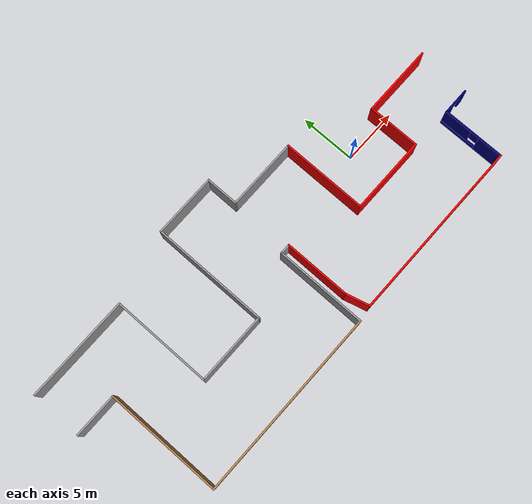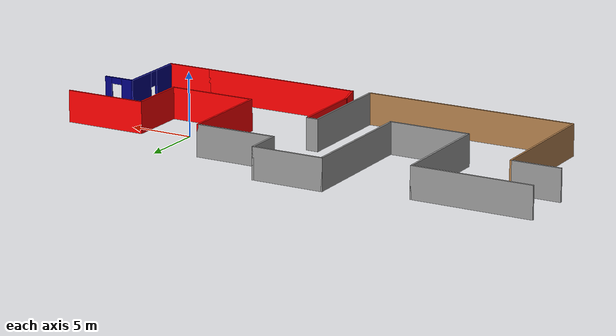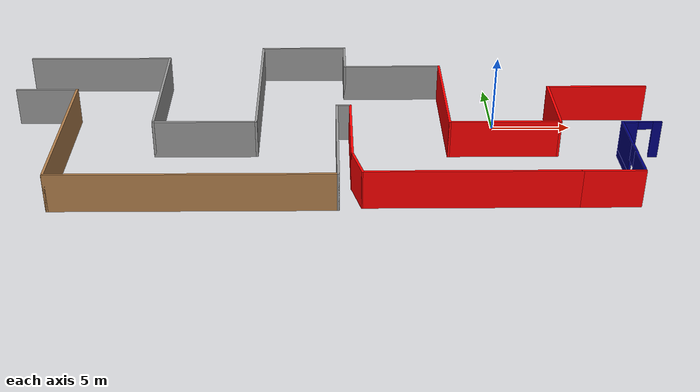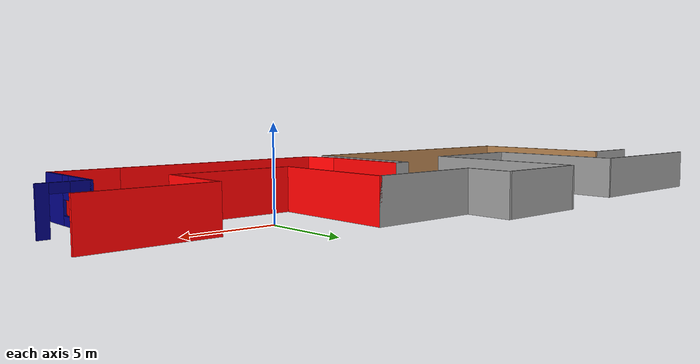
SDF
<?xml version='1.0'?>
<sdf version='1.6'>
  <model name='mybuilding'>
    <pose frame=''>-10.4735 -1.25673 0 0 -0 0</pose>
    <link name='Wall_10'>
      <collision name='Wall_10_Collision'>
        <geometry>
          <box>
            <size>6.5 0.15 2.5</size>
          </box>
        </geometry>
        <pose frame=''>0 0 1.25 0 -0 0</pose>
      </collision>
      <visual name='Wall_10_Visual'>
        <pose frame=''>0 0 1.25 0 -0 0</pose>
        <geometry>
          <box>
            <size>6.5 0.15 2.5</size>
          </box>
        </geometry>
        <material>
          <script>
            <uri>file://media/materials/scripts/gazebo.material</uri>
            <name>Gazebo/Grey</name>
          </script>
          <ambient>1 1 1 1</ambient>
        </material>
        <meta>
          <layer>0</layer>
        </meta>
      </visual>
      <pose frame=''>4.05 5.33923 0 0 -0 0</pose>
    </link>
    <link name='Wall_11'>
      <collision name='Wall_11_Collision'>
        <geometry>
          <box>
            <size>7.75 0.15 2.5</size>
          </box>
        </geometry>
        <pose frame=''>0 0 1.25 0 -0 0</pose>
      </collision>
      <visual name='Wall_11_Visual'>
        <pose frame=''>0 0 1.25 0 -0 0</pose>
        <geometry>
          <box>
            <size>7.75 0.15 2.5</size>
          </box>
        </geometry>
        <material>
          <script>
            <uri>file://media/materials/scripts/gazebo.material</uri>
            <name>Gazebo/Grey</name>
          </script>
          <ambient>1 0 0 1</ambient>
        </material>
        <meta>
          <layer>0</layer>
        </meta>
      </visual>
      <pose frame=''>7.225 1.53923 0 0 0 -1.5708</pose>
    </link>
    <link name='Wall_12'>
      <collision name='Wall_12_Collision'>
        <geometry>
          <box>
            <size>7 0.15 2.5</size>
          </box>
        </geometry>
        <pose frame=''>0 0 1.25 0 -0 0</pose>
      </collision>
      <visual name='Wall_12_Visual'>
        <pose frame=''>0 0 1.25 0 -0 0</pose>
        <geometry>
          <box>
            <size>7 0.15 2.5</size>
          </box>
        </geometry>
        <material>
          <script>
            <uri>file://media/materials/scripts/gazebo.material</uri>
            <name>Gazebo/Grey</name>
          </script>
          <ambient>1 0 0 1</ambient>
        </material>
        <meta>
          <layer>0</layer>
        </meta>
      </visual>
      <pose frame=''>10.65 -2.26077 0 0 -0 0</pose>
    </link>
    <link name='Wall_13'>
      <collision name='Wall_13_Collision'>
        <geometry>
          <box>
            <size>4.75 0.15 2.5</size>
          </box>
        </geometry>
        <pose frame=''>0 0 1.25 0 -0 0</pose>
      </collision>
      <visual name='Wall_13_Visual'>
        <pose frame=''>0 0 1.25 0 -0 0</pose>
        <geometry>
          <box>
            <size>4.75 0.15 2.5</size>
          </box>
        </geometry>
        <material>
          <script>
            <uri>file://media/materials/scripts/gazebo.material</uri>
            <name>Gazebo/Grey</name>
          </script>
          <ambient>1 0 0 1</ambient>
        </material>
        <meta>
          <layer>0</layer>
        </meta>
      </visual>
      <pose frame=''>14.075 0.039226 0 0 -0 1.5708</pose>
    </link>
    <link name='Wall_14'>
      <collision name='Wall_14_Collision'>
        <geometry>
          <box>
            <size>6.5 0.15 2.5</size>
          </box>
        </geometry>
        <pose frame=''>0 0 1.25 0 -0 0</pose>
      </collision>
      <visual name='Wall_14_Visual'>
        <pose frame=''>0 0 1.25 0 -0 0</pose>
        <geometry>
          <box>
            <size>6.5 0.15 2.5</size>
          </box>
        </geometry>
        <material>
          <script>
            <uri>file://media/materials/scripts/gazebo.material</uri>
            <name>Gazebo/Grey</name>
          </script>
          <ambient>1 0 0 1</ambient>
        </material>
        <meta>
          <layer>0</layer>
        </meta>
      </visual>
      <pose frame=''>17.25 2.33923 0 0 -0 0</pose>
    </link>
    <link name='Wall_16'>
      <collision name='Wall_16_Collision'>
        <geometry>
          <box>
            <size>4 0.15 2.5</size>
          </box>
        </geometry>
        <pose frame=''>0 0 1.25 0 -0 0</pose>
      </collision>
      <visual name='Wall_16_Visual'>
        <pose frame=''>0 0 1.25 0 -0 0</pose>
        <geometry>
          <box>
            <size>4 0.15 2.5</size>
          </box>
        </geometry>
        <material>
          <script>
            <uri>file://media/materials/scripts/gazebo.material</uri>
            <name>Gazebo/Grey</name>
          </script>
          <ambient>1 1 1 1</ambient>
        </material>
        <meta>
          <layer>0</layer>
        </meta>
      </visual>
      <pose frame=''>-18.5 2.16077 0 0 -0 0</pose>
    </link>
    <link name='Wall_17'>
      <collision name='Wall_17_Collision'>
        <geometry>
          <box>
            <size>10.5 0.15 2.5</size>
          </box>
        </geometry>
        <pose frame=''>0 0 1.25 0 -0 0</pose>
      </collision>
      <visual name='Wall_17_Visual'>
        <pose frame=''>0 0 1.25 0 -0 0</pose>
        <geometry>
          <box>
            <size>10.5 0.15 2.5</size>
          </box>
        </geometry>
        <material>
          <script>
            <uri>file://media/materials/scripts/gazebo.material</uri>
            <name>Gazebo/Wood</name>
          </script>
          <ambient>1 1 1 1</ambient>
        </material>
        <meta>
          <layer>0</layer>
        </meta>
      </visual>
      <pose frame=''>-16.575 -3.01423 0 0 0 -1.5708</pose>
    </link>
    <link name='Wall_18'>
      <collision name='Wall_18_Collision'>
        <geometry>
          <box>
            <size>17 0.15 2.5</size>
          </box>
        </geometry>
        <pose frame=''>0 0 1.25 0 -0 0</pose>
      </collision>
      <visual name='Wall_18_Visual'>
        <pose frame=''>0 0 1.25 0 -0 0</pose>
        <geometry>
          <box>
            <size>17 0.15 2.5</size>
          </box>
        </geometry>
        <material>
          <script>
            <uri>file://media/materials/scripts/gazebo.material</uri>
            <name>Gazebo/Wood</name>
          </script>
          <ambient>1 1 1 1</ambient>
        </material>
        <meta>
          <layer>0</layer>
        </meta>
      </visual>
      <pose frame=''>-8.15 -8.18923 0 0 -0 0</pose>
    </link>
    <link name='Wall_19'>
      <collision name='Wall_19_Collision'>
        <geometry>
          <box>
            <size>8.25 0.15 2.5</size>
          </box>
        </geometry>
        <pose frame=''>0 0 1.25 0 -0 0</pose>
      </collision>
      <visual name='Wall_19_Visual'>
        <pose frame=''>0 0 1.25 0 -0 0</pose>
        <geometry>
          <box>
            <size>8.25 0.15 2.5</size>
          </box>
        </geometry>
        <material>
          <script>
            <uri>file://media/materials/scripts/gazebo.material</uri>
            <name>Gazebo/Grey</name>
          </script>
          <ambient>1 1 1 1</ambient>
        </material>
        <meta>
          <layer>0</layer>
        </meta>
      </visual>
      <pose frame=''>0.275 -4.13923 0 0 -0 1.5708</pose>
    </link>
    <link name='Wall_20'>
      <collision name='Wall_20_Collision'>
        <geometry>
          <box>
            <size>1 0.15 2.5</size>
          </box>
        </geometry>
        <pose frame=''>0 0 1.25 0 -0 0</pose>
      </collision>
      <visual name='Wall_20_Visual'>
        <pose frame=''>0 0 1.25 0 -0 0</pose>
        <geometry>
          <box>
            <size>1 0.15 2.5</size>
          </box>
        </geometry>
        <material>
          <script>
            <uri>file://media/materials/scripts/gazebo.material</uri>
            <name>Gazebo/Grey</name>
          </script>
          <ambient>1 1 1 1</ambient>
        </material>
        <meta>
          <layer>0</layer>
        </meta>
      </visual>
      <pose frame=''>0.7 -0.089226 0 0 -0 0</pose>
    </link>
    <link name='Wall_21'>
      <collision name='Wall_21_Collision'>
        <geometry>
          <box>
            <size>6 0.15 2.5</size>
          </box>
        </geometry>
        <pose frame=''>0 0 1.25 0 -0 0</pose>
      </collision>
      <visual name='Wall_21_Visual'>
        <pose frame=''>0 0 1.25 0 -0 0</pose>
        <geometry>
          <box>
            <size>6 0.15 2.5</size>
          </box>
        </geometry>
        <material>
          <script>
            <uri>file://media/materials/scripts/gazebo.material</uri>
            <name>Gazebo/Grey</name>
          </script>
          <ambient>1 0 0 1</ambient>
        </material>
        <meta>
          <layer>0</layer>
        </meta>
      </visual>
      <pose frame=''>1.125 -3.01423 0 0 0 -1.5708</pose>
    </link>
    <link name='Wall_22'>
      <collision name='Wall_22_Collision'>
        <geometry>
          <box>
            <size>2.25 0.15 2.5</size>
          </box>
        </geometry>
        <pose frame=''>0 0 1.25 0 -0 0</pose>
      </collision>
      <visual name='Wall_22_Visual'>
        <pose frame=''>0 0 1.25 0 -0 0</pose>
        <geometry>
          <box>
            <size>2.25 0.15 2.5</size>
          </box>
        </geometry>
        <material>
          <script>
            <uri>file://media/materials/scripts/gazebo.material</uri>
            <name>Gazebo/Grey</name>
          </script>
          <ambient>1 0 0 1</ambient>
        </material>
        <meta>
          <layer>0</layer>
        </meta>
      </visual>
      <pose frame=''>1.39676 -6.95345 0 0 0 -1.309</pose>
    </link>
    <link name='Wall_23'>
      <collision name='Wall_23_Collision'>
        <geometry>
          <box>
            <size>12.75 0.15 2.5</size>
          </box>
        </geometry>
        <pose frame=''>0 0 1.25 0 -0 0</pose>
      </collision>
      <visual name='Wall_23_Visual'>
        <pose frame=''>0 0 1.25 0 -0 0</pose>
        <geometry>
          <box>
            <size>12.75 0.15 2.5</size>
          </box>
        </geometry>
        <material>
          <script>
            <uri>file://media/materials/scripts/gazebo.material</uri>
            <name>Gazebo/Grey</name>
          </script>
          <ambient>1 0 0 1</ambient>
        </material>
        <meta>
          <layer>0</layer>
        </meta>
      </visual>
      <pose frame=''>7.96852 -7.96767 0 0 -0 0</pose>
    </link>
    <link name='Wall_24'>
      <collision name='Wall_24_Collision'>
        <geometry>
          <box>
            <size>3.75 0.15 2.5</size>
          </box>
        </geometry>
        <pose frame=''>0 0 1.25 0 -0 0</pose>
      </collision>
      <visual name='Wall_24_Visual'>
        <pose frame=''>0 0 1.25 0 -0 0</pose>
        <geometry>
          <box>
            <size>3.75 0.15 2.5</size>
          </box>
        </geometry>
        <material>
          <script>
            <uri>file://media/materials/scripts/gazebo.material</uri>
            <name>Gazebo/Grey</name>
          </script>
          <ambient>1 0 0 1</ambient>
        </material>
        <meta>
          <layer>0</layer>
        </meta>
      </visual>
      <pose frame=''>16.0685 -7.96767 0 0 -0 0</pose>
    </link>
    <link name='Wall_25'>
      <pose frame=''>17.8685 -5.16767 0 0 -0 1.5708</pose>
      <visual name='Wall_25_Visual_0'>
        <pose frame=''>-1.7234 0 1.25 0 -0 0</pose>
        <geometry>
          <box>
            <size>2.3032 0.15 2.5</size>
          </box>
        </geometry>
        <material>
          <script>
            <uri>file://media/materials/scripts/gazebo.material</uri>
            <name>Gazebo/Grey</name>
          </script>
          <ambient>0 0 0.498039 1</ambient>
        </material>
        <meta>
          <layer>0</layer>
        </meta>
      </visual>
      <collision name='Wall_25_Collision_0'>
        <geometry>
          <box>
            <size>2.3032 0.15 2.5</size>
          </box>
        </geometry>
        <pose frame=''>-1.7234 0 1.25 0 -0 0</pose>
      </collision>
      <visual name='Wall_25_Visual_1'>
        <pose frame=''>1.1516 0 0.25 0 -0 0</pose>
        <geometry>
          <box>
            <size>3.4468 0.15 0.5</size>
          </box>
        </geometry>
        <material>
          <script>
            <uri>file://media/materials/scripts/gazebo.material</uri>
            <name>Gazebo/Grey</name>
          </script>
          <ambient>0 0 0.498039 1</ambient>
        </material>
        <meta>
          <layer>0</layer>
        </meta>
      </visual>
      <collision name='Wall_25_Collision_1'>
        <geometry>
          <box>
            <size>3.4468 0.15 0.5</size>
          </box>
        </geometry>
        <pose frame=''>1.1516 0 0.25 0 -0 0</pose>
      </collision>
      <visual name='Wall_25_Visual_2'>
        <pose frame=''>1.5516 0 1.5 0 -0 0</pose>
        <geometry>
          <box>
            <size>2.6468 0.15 2</size>
          </box>
        </geometry>
        <material>
          <script>
            <uri>file://media/materials/scripts/gazebo.material</uri>
            <name>Gazebo/Grey</name>
          </script>
          <ambient>0 0 0.498039 1</ambient>
        </material>
        <meta>
          <layer>0</layer>
        </meta>
      </visual>
      <collision name='Wall_25_Collision_2'>
        <geometry>
          <box>
            <size>2.6468 0.15 2</size>
          </box>
        </geometry>
        <pose frame=''>1.5516 0 1.5 0 -0 0</pose>
      </collision>
      <visual name='Wall_25_Visual_3'>
        <pose frame=''>-0.171804 0 1.9 0 -0 0</pose>
        <geometry>
          <box>
            <size>0.8 0.15 1.2</size>
          </box>
        </geometry>
        <material>
          <script>
            <uri>file://media/materials/scripts/gazebo.material</uri>
            <name>Gazebo/Grey</name>
          </script>
          <ambient>0 0 0.498039 1</ambient>
        </material>
        <meta>
          <layer>0</layer>
        </meta>
      </visual>
      <collision name='Wall_25_Collision_3'>
        <geometry>
          <box>
            <size>0.8 0.15 1.2</size>
          </box>
        </geometry>
        <pose frame=''>-0.171804 0 1.9 0 -0 0</pose>
      </collision>
    </link>
    <link name='Wall_26'>
      <pose frame=''>19.0435 -2.36767 0 0 -0 0</pose>
      <visual name='Wall_26_Visual_0'>
        <pose frame=''>-0.736905 0 1.25 0 -0 0</pose>
        <geometry>
          <box>
            <size>1.02619 0.15 2.5</size>
          </box>
        </geometry>
        <material>
          <script>
            <uri>file://media/materials/scripts/gazebo.material</uri>
            <name>Gazebo/Grey</name>
          </script>
          <ambient>0 0 0.498039 1</ambient>
        </material>
        <meta>
          <layer>0</layer>
        </meta>
      </visual>
      <collision name='Wall_26_Collision_0'>
        <geometry>
          <box>
            <size>1.02619 0.15 2.5</size>
          </box>
        </geometry>
        <pose frame=''>-0.736905 0 1.25 0 -0 0</pose>
      </collision>
      <visual name='Wall_26_Visual_1'>
        <pose frame=''>0.963095 0 1.25 0 -0 0</pose>
        <geometry>
          <box>
            <size>0.57381 0.15 2.5</size>
          </box>
        </geometry>
        <material>
          <script>
            <uri>file://media/materials/scripts/gazebo.material</uri>
            <name>Gazebo/Grey</name>
          </script>
          <ambient>0 0 0.498039 1</ambient>
        </material>
        <meta>
          <layer>0</layer>
        </meta>
      </visual>
      <collision name='Wall_26_Collision_1'>
        <geometry>
          <box>
            <size>0.57381 0.15 2.5</size>
          </box>
        </geometry>
        <pose frame=''>0.963095 0 1.25 0 -0 0</pose>
      </collision>
      <visual name='Wall_26_Visual_2'>
        <pose frame=''>0.22619 0 2.25 0 -0 0</pose>
        <geometry>
          <box>
            <size>0.9 0.15 0.5</size>
          </box>
        </geometry>
        <material>
          <script>
            <uri>file://media/materials/scripts/gazebo.material</uri>
            <name>Gazebo/Grey</name>
          </script>
          <ambient>0 0 0.498039 1</ambient>
        </material>
        <meta>
          <layer>0</layer>
        </meta>
      </visual>
      <collision name='Wall_26_Collision_2'>
        <geometry>
          <box>
            <size>0.9 0.15 0.5</size>
          </box>
        </geometry>
        <pose frame=''>0.22619 0 2.25 0 -0 0</pose>
      </collision>
    </link>
    <link name='Wall_4'>
      <collision name='Wall_4_Collision'>
        <geometry>
          <box>
            <size>9.5 0.15 2.5</size>
          </box>
        </geometry>
        <pose frame=''>0 0 1.25 0 -0 0</pose>
      </collision>
      <visual name='Wall_4_Visual'>
        <pose frame=''>0 0 1.25 0 -0 0</pose>
        <geometry>
          <box>
            <size>9.5 0.15 2.5</size>
          </box>
        </geometry>
        <material>
          <script>
            <uri>file://media/materials/scripts/gazebo.material</uri>
            <name>Gazebo/Grey</name>
          </script>
          <ambient>1 1 1 1</ambient>
        </material>
        <meta>
          <layer>0</layer>
        </meta>
      </visual>
      <pose frame=''>-15.75 6.68923 0 0 -0 0</pose>
    </link>
    <link name='Wall_5'>
      <collision name='Wall_5_Collision'>
        <geometry>
          <box>
            <size>9 0.15 2.5</size>
          </box>
        </geometry>
        <pose frame=''>0 0 1.25 0 -0 0</pose>
      </collision>
      <visual name='Wall_5_Visual'>
        <pose frame=''>0 0 1.25 0 -0 0</pose>
        <geometry>
          <box>
            <size>9 0.15 2.5</size>
          </box>
        </geometry>
        <material>
          <script>
            <uri>file://media/materials/scripts/gazebo.material</uri>
            <name>Gazebo/Grey</name>
          </script>
          <ambient>1 1 1 1</ambient>
        </material>
        <meta>
          <layer>0</layer>
        </meta>
      </visual>
      <pose frame=''>-11.075 2.26423 0 0 0 -1.5708</pose>
    </link>
    <link name='Wall_6'>
      <collision name='Wall_6_Collision'>
        <geometry>
          <box>
            <size>6.5 0.15 2.5</size>
          </box>
        </geometry>
        <pose frame=''>0 0 1.25 0 -0 0</pose>
      </collision>
      <visual name='Wall_6_Visual'>
        <pose frame=''>0 0 1.25 0 -0 0</pose>
        <geometry>
          <box>
            <size>6.5 0.15 2.5</size>
          </box>
        </geometry>
        <material>
          <script>
            <uri>file://media/materials/scripts/gazebo.material</uri>
            <name>Gazebo/Grey</name>
          </script>
          <ambient>1 1 1 1</ambient>
        </material>
        <meta>
          <layer>0</layer>
        </meta>
      </visual>
      <pose frame=''>-7.9 -2.16077 0 0 -0 0</pose>
    </link>
    <link name='Wall_7'>
      <collision name='Wall_7_Collision'>
        <geometry>
          <box>
            <size>10.5 0.15 2.5</size>
          </box>
        </geometry>
        <pose frame=''>0 0 1.25 0 -0 0</pose>
      </collision>
      <visual name='Wall_7_Visual'>
        <pose frame=''>0 0 1.25 0 -0 0</pose>
        <geometry>
          <box>
            <size>10.5 0.15 2.5</size>
          </box>
        </geometry>
        <material>
          <script>
            <uri>file://media/materials/scripts/gazebo.material</uri>
            <name>Gazebo/Grey</name>
          </script>
          <ambient>1 1 1 1</ambient>
        </material>
        <meta>
          <layer>0</layer>
        </meta>
      </visual>
      <pose frame=''>-4.725 3.01423 0 0 -0 1.5708</pose>
    </link>
    <link name='Wall_8'>
      <collision name='Wall_8_Collision'>
        <geometry>
          <box>
            <size>5.75 0.15 2.5</size>
          </box>
        </geometry>
        <pose frame=''>0 0 1.25 0 -0 0</pose>
      </collision>
      <visual name='Wall_8_Visual'>
        <pose frame=''>0 0 1.25 0 -0 0</pose>
        <geometry>
          <box>
            <size>5.75 0.15 2.5</size>
          </box>
        </geometry>
        <material>
          <script>
            <uri>file://media/materials/scripts/gazebo.material</uri>
            <name>Gazebo/Grey</name>
          </script>
          <ambient>1 1 1 1</ambient>
        </material>
        <meta>
          <layer>0</layer>
        </meta>
      </visual>
      <pose frame=''>-1.925 8.18923 0 0 -0 0</pose>
    </link>
    <link name='Wall_9'>
      <collision name='Wall_9_Collision'>
        <geometry>
          <box>
            <size>3 0.15 2.5</size>
          </box>
        </geometry>
        <pose frame=''>0 0 1.25 0 -0 0</pose>
      </collision>
      <visual name='Wall_9_Visual'>
        <pose frame=''>0 0 1.25 0 -0 0</pose>
        <geometry>
          <box>
            <size>3 0.15 2.5</size>
          </box>
        </geometry>
        <material>
          <script>
            <uri>file://media/materials/scripts/gazebo.material</uri>
            <name>Gazebo/Grey</name>
          </script>
          <ambient>1 1 1 1</ambient>
        </material>
        <meta>
          <layer>0</layer>
        </meta>
      </visual>
      <pose frame=''>0.875 6.76423 0 0 0 -1.5708</pose>
    </link>
    <static>1</static>
  </model>
</sdf>
